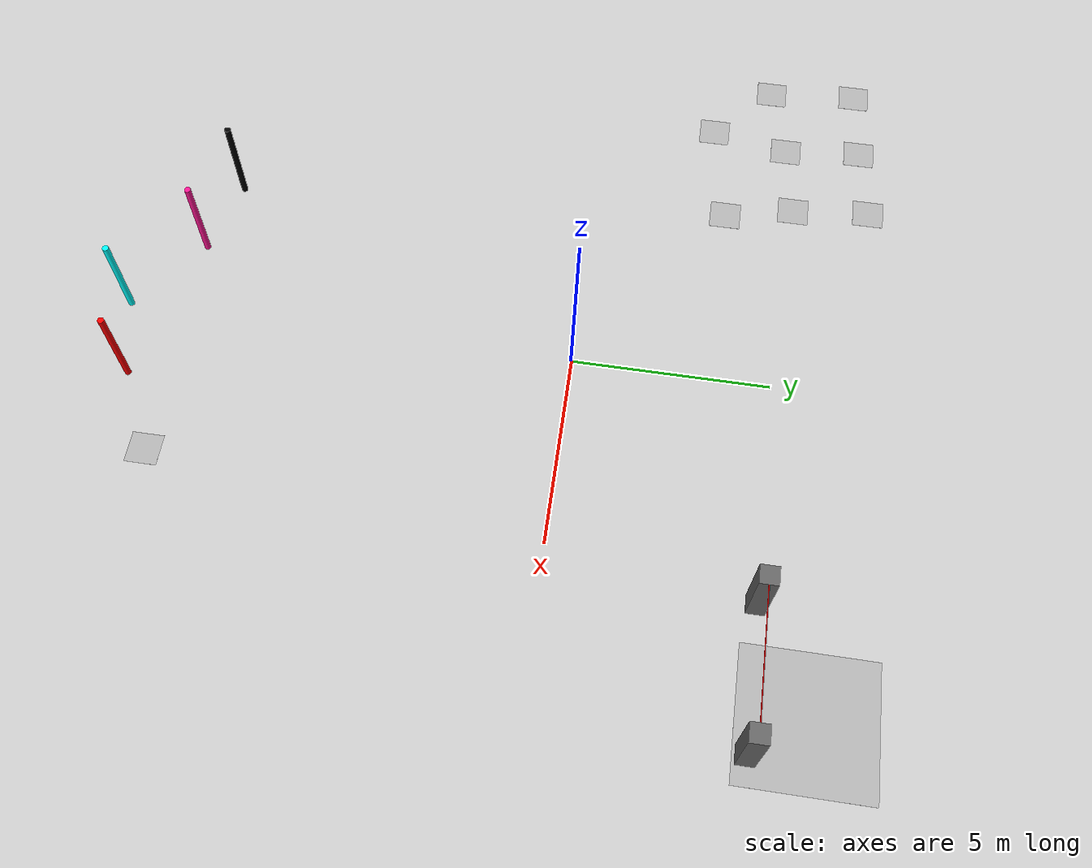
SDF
<?xml version='1.0' encoding='utf-8'?>
<sdf version='1.9'>
    <world name="eletroquad">

        <physics type="ode">
            <max_step_size>0.001</max_step_size>
            <real_time_factor>1</real_time_factor>
            <real_time_update_rate>1000</real_time_update_rate>
        </physics>

        <gravity>0 0 -9.8</gravity>

        <magnetic_field>5.5645e-06 2.28758e-05 -4.23884e-05</magnetic_field>

        <atmosphere type='adiabatic'/>

        <scene>
            <ambient>0.400000006 0.400000006 0.400000006 1</ambient>
            <background>0.699999988 0.699999988 0.699999988 1</background>
            <sky/>
            <shadows>true</shadows>
            <grid>false</grid>
        </scene>

        <!--Plataforma base-->
        <model name="ground_plane">
            <include>
                <uri>models/ground_plane</uri>
            </include>
        </model>

        <!-- 2 suportes -->
        <model name="suporte_1">
            <include>
                <uri>models/suporte</uri>
            </include>
            <pose>9.225 5 1 0 0 0</pose>
        </model>

        <model name="suporte_2">
            <include>
                <uri>models/suporte</uri>
            </include>
            <pose>5.775 5 1 0 0 0</pose>
        </model>

        <!-- plataforma + caminho -->
        <model name="figura_caminho">
            <include>
                <uri>models/figure_path</uri>
            </include>
            <pose>9.5 7.5 0.001 0 0 0</pose>
        </model>

        <!-- mangueira -->
        <model name="mangueira">
            <include>
                <uri>models/hose</uri>
            </include>
            <pose>7.5 5 1.99 0 1.5708 0</pose> <!--  girado por 90 graus em rad (pi/2) -->
        </model>

        <!-- 8 figuras -->
        <model name="bola_azul">
            <include>
                <uri>models/figure1</uri>
            </include>
            <pose>-5.7 7.3 0.001 0 0 0</pose>
        </model>

        <model name="quadrado_marrom">
            <include>
                <uri>models/figure2</uri>
            </include>
            <pose>-5.1 3.5 0.001 0 0 0</pose>
        </model>

        <model name="triangulo_azul">
            <include>
                <uri>models/figure3</uri>
            </include>
            <pose>-9.7 6.8 0.001 0 0 0</pose>
        </model>

        <model name="hexagono_vermelho">
            <include>
                <uri>models/figure4</uri>
            </include>
            <pose>-7.5 5 0.001 0 0 0</pose>
        </model>

        <model name="pentagono_vermelho">
            <include>
                <uri>models/figure5</uri>
            </include>
            <pose>-9.5 4.5 0.001 0 0 0</pose>
        </model>

        <model name="estrela_verde">
            <include>
                <uri>models/figure6</uri>
            </include>
            <pose>-7.9 3.0 0.001 0 0 0</pose>
        </model>

        <model name="cruz_rosa">
            <include>
                <uri>models/figure7</uri>
            </include>
            <pose>-5.5 5.3 0.001 0 0 0</pose>
        </model>

        <model name="poligono_laranja">
            <include>
                <uri>models/figure8</uri>
            </include>
            <pose>-7.7 7.0 0.001 0 0 0</pose>
        </model>

        <!-- 4 traves -->
        <model name="trave_vermelha">
            <include>
                <uri>models/pole_red</uri>
            </include>
            <pose>2 -11 1.25 0 0 0</pose>
        </model>

        <model name="trave_ciano">
            <include>
                <uri>models/pole_cyan</uri>
            </include>
            <pose>0 -11.5 1.25 0 0 0</pose>
        </model>

        <model name="trave_rosa">
            <include>
                <uri>models/pole_pink</uri>
            </include>
            <pose>-2 -10 1.25 0 0 0</pose>
        </model>

        <model name="trave_preta">
            <include>
                <uri>models/pole_black</uri>
            </include>
            <pose>-4 -9.5 1.25 0 0 0</pose>
        </model>

        <!-- plataforma das traves -->
        <model name="plataforma_traves">
            <include>
                <uri>models/figure1</uri>
            </include>
            <pose>4 -10 0.01 0 0 0</pose>
        </model>

        <!-- luz -->
        <light name='sun' type='directional'>
            <pose>0 0 10 0 0 0</pose>
            <cast_shadows>true</cast_shadows>
            <intensity>1</intensity>
            <direction>-0.5 0.1 -0.9</direction>
            <diffuse>0.8 0.8 0.8 1</diffuse>
            <specular>0.2 0.2 0.2 1</specular>
            <attenuation>
                <range>1000</range>
                <linear>0.01</linear>
                <constant>0.9</constant>
                <quadratic>0.001</quadratic>
            </attenuation>
            <spot>
                <inner_angle>0</inner_angle>
                <outer_angle>0</outer_angle>
                <falloff>0</falloff>
            </spot>
        </light>

        <spherical_coordinates>
            <surface_model>EARTH_WGS84</surface_model>
            <world_frame_orientation>ENU</world_frame_orientation>
            <latitude_deg>47.397971057728974</latitude_deg>
            <longitude_deg> 8.546163739800146</longitude_deg>
            <elevation>0</elevation>
        </spherical_coordinates>

    </world>
</sdf>

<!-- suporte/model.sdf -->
<sdf version='1.9'>
<model name='box'>
  <pose>0 0 0 0 0 0</pose>
  <link name='box_link'>
    <collision name='box_collision'>
      <geometry>
        <box>
          <size>0.4 0.4 2</size>
        </box>
      </geometry>
      <surface>
        <friction>
          <ode/>
        </friction>
        <bounce/>
        <contact/>
      </surface>
    </collision>
    <visual name='visual'>
      <geometry>
        <box>
          <size>0.45 0.45 2</size>
        </box>
      </geometry>
      <material>
        <ambient>0.25 0.25 0.25 1.0</ambient>
        <diffuse>0.4 0.4 0.4 1.0</diffuse>
        <specular>0.774597 0.774597 0.774597 1.0</specular>
      </material>
    </visual>
    <pose>0 0 0 0 0 0</pose>
    <enable_wind>false</enable_wind>
  </link>
  <static>true</static>
  <self_collide>false</self_collide>
</model>
</sdf>

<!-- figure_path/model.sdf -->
<sdf version='1.9'>
<model name='figure'>
  <pose>0 0 0 0 0 0</pose>
  <static>true</static>
  <self_collide>false</self_collide>
  <link name='box_link'>
    <collision name='box_collision'>
      <geometry>
        <box>
          <size>0.8 0.8 0.002</size>
        </box>
      </geometry>
      <surface>
        <friction>
          <ode/>
        </friction>
        <bounce/>
        <contact/>
      </surface>
    </collision>
    <visual name='visual'>
      <pose>0 0 -0.001 0 0 0</pose>
      <geometry>
        <box>
          <size>0.8 0.8 0.001</size>
        </box>
      </geometry>
      <material>
        <ambient>1 1 1 1</ambient> <!-- white -->
        <diffuse>1 1 1 1</diffuse>
        <specular>1 1 1 1</specular>
        <emissive>1 1 1 1</emissive>
      </material>
      <cast_shadows>false</cast_shadows>
    </visual>
    <visual name='image'>
      <pose> -1.2 -1.2 0.001 0 0 0</pose>
      <geometry>
        <box>
          <size>3.2 3.2 0.001</size>
        </box>
      </geometry>
      <material>
        <diffuse>0.7 0.7 0.7 1</diffuse>
        <specular>1 1 1 1</specular>
        <pbr>
          <metal>
            <albedo_map>materials/textures/bola_azul_caminho.png</albedo_map>   <!-- image-->
            <metalness> 0 </metalness>
            <roughness>1</roughness>
          </metal>
        </pbr>
      </material>
    <cast_shadows>false</cast_shadows>
    </visual>
    <enable_wind>false</enable_wind>
  </link>
</model>
</sdf>

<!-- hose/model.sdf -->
<sdf version='1.9'>
  <model name='pole'>
    <pose>0 0 0 0 0 0</pose>
    <link name='cylinder_link'>
      <collision name='cylinder_collision'>
        <geometry>
            <cylinder>
              <radius>0.0127</radius>
              <length>3</length>
            </cylinder>
          </geometry>
        <surface>
          <friction>
            <ode/>
          </friction>
          <bounce/>
          <contact/>
        </surface>
      </collision>
      <visual name='cylinder_visual'>
          <geometry>
            <cylinder>
              <radius>0.0127</radius>
              <length>3</length>
            </cylinder>
          </geometry>
          <material>
          <ambient>1 0 0 1</ambient>
          <diffuse>1 0 0 1</diffuse>
          <specular>0.5 0.5 0.5 1</specular>
          </material>
        </visual>
      <pose>0 0 0 0 0 0</pose>
      <enable_wind>false</enable_wind>
    </link>
    <static>true</static>
    <self_collide>false</self_collide>
  </model>
</sdf>

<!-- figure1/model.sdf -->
<sdf version='1.9'>
<model name='figure'>
  <pose>0 0 0 0 0 0</pose>
  <static>true</static>
  <self_collide>false</self_collide>
  <link name='box_link'>
    <collision name='box_collision'>
      <geometry>
        <box>
          <size>0.8 0.8 0.002</size>
        </box>
      </geometry>
      <surface>
        <friction>
          <ode/>
        </friction>
        <bounce/>
        <contact/>
      </surface>
    </collision>
    <visual name='visual'>
      <pose>0 0 -0.001 0 0 0</pose>
      <geometry>
        <box>
          <size>0.8 0.8 0.001</size>
        </box>
      </geometry>
      <material>
        <ambient>1 1 1 1</ambient> <!-- white -->
        <diffuse>1 1 1 1</diffuse>
        <specular>1 1 1 1</specular>
        <emissive>1 1 1 1</emissive>
      </material>
      <cast_shadows>false</cast_shadows>
    </visual>
    <visual name='image'>
      <pose>0 0 0.001 0 0 0</pose>
      <geometry>
        <box>
          <size>0.8 0.8 0.001</size>
        </box>
      </geometry>
      <material>
        <diffuse>0.7 0.7 0.7 1</diffuse>
        <specular>1 1 1 1</specular>
        <pbr>
          <metal>
            <albedo_map>materials/textures/bola_azul.png</albedo_map>   <!-- image-->
            <metalness> 0 </metalness>
            <roughness>1</roughness>
          </metal>
        </pbr>
      </material>
      <cast_shadows>false</cast_shadows>
    </visual>
    <enable_wind>false</enable_wind>
  </link>
</model>
</sdf>

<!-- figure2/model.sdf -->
<sdf version='1.9'>
<model name='figure'>
  <pose>0 0 0 0 0 0</pose>
  <static>true</static>
  <self_collide>false</self_collide>
  <link name='box_link'>
    <collision name='box_collision'>
      <geometry>
        <box>
          <size>0.8 0.8 0.002</size>
        </box>
      </geometry>
      <surface>
        <friction>
          <ode/>
        </friction>
        <bounce/>
        <contact/>
      </surface>
    </collision>
    <visual name='visual'>
      <pose>0 0 -0.001 0 0 0</pose>
      <geometry>
        <box>
          <size>0.8 0.8 0.001</size>
        </box>
      </geometry>
      <material>
        <ambient>1 1 1 1</ambient> <!-- white -->
        <diffuse>1 1 1 1</diffuse>
        <specular>1 1 1 1</specular>
        <emissive>1 1 1 1</emissive>
      </material>
      <cast_shadows>false</cast_shadows>
    </visual>
    <visual name='image'>
      <pose>0 0 0.001 0 0 0</pose>
      <geometry>
        <box>
          <size>0.8 0.8 0.001</size>
        </box>
      </geometry>
      <material>
        <diffuse>0.7 0.7 0.7 1</diffuse>
        <specular>1 1 1 1</specular>
        <pbr>
          <metal>
            <albedo_map>materials/textures/quadrado_marrom.png</albedo_map>   <!-- image-->
            <metalness> 0 </metalness>
            <roughness>1</roughness>
          </metal>
        </pbr>
      </material>
      <cast_shadows>false</cast_shadows>
    </visual>
    <enable_wind>false</enable_wind>
  </link>
</model>
</sdf>

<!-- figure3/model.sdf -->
<sdf version='1.9'>
<model name='figure'>
  <pose>0 0 0 0 0 0</pose>
  <static>true</static>
  <self_collide>false</self_collide>
  <link name='box_link'>
    <collision name='box_collision'>
      <geometry>
        <box>
          <size>0.8 0.8 0.002</size>
        </box>
      </geometry>
      <surface>
        <friction>
          <ode/>
        </friction>
        <bounce/>
        <contact/>
      </surface>
    </collision>
    <visual name='visual'>
      <pose>0 0 -0.001 0 0 0</pose>
      <geometry>
        <box>
          <size>0.8 0.8 0.001</size>
        </box>
      </geometry>
      <material>
        <ambient>1 1 1 1</ambient> <!-- white -->
        <diffuse>1 1 1 1</diffuse>
        <specular>1 1 1 1</specular>
        <emissive>1 1 1 1</emissive>
      </material>
      <cast_shadows>false</cast_shadows>
    </visual>
    <visual name='image'>
      <pose>0 0 0.001 0 0 0</pose>
      <geometry>
        <box>
          <size>0.8 0.8 0.001</size>
        </box>
      </geometry>
      <material>
        <diffuse>0.7 0.7 0.7 1</diffuse>
        <specular>1 1 1 1</specular>
        <pbr>
          <metal>
            <albedo_map>materials/textures/triangulo_azul.png</albedo_map>   <!-- image-->
            <metalness> 0 </metalness>
            <roughness>1</roughness>
          </metal>
        </pbr>
      </material>
      <cast_shadows>false</cast_shadows>
    </visual>
    <enable_wind>false</enable_wind>
  </link>
</model>
</sdf>

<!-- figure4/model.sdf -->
<sdf version='1.9'>
<model name='figure'>
  <pose>0 0 0 0 0 0</pose>
  <static>true</static>
  <self_collide>false</self_collide>
  <link name='box_link'>
    <collision name='box_collision'>
      <geometry>
        <box>
          <size>0.8 0.8 0.002</size>
        </box>
      </geometry>
      <surface>
        <friction>
          <ode/>
        </friction>
        <bounce/>
        <contact/>
      </surface>
    </collision>
    <visual name='visual'>
      <pose>0 0 -0.0005 0 0 0</pose>
      <geometry>
        <box>
          <size>0.8 0.8 0.001</size>
        </box>
      </geometry>
      <material>
        <ambient>1 1 1 1</ambient> <!-- white -->
        <diffuse>1 1 1 1</diffuse>
        <specular>1 1 1 1</specular>
        <emissive>1 1 1 1</emissive>
      </material>
      <cast_shadows>false</cast_shadows>
    </visual>
    <visual name='image'>
      <pose>0 0 0.0005 0 0 0</pose>
      <geometry>
        <box>
          <size>0.8 0.8 0.001</size>
        </box>
      </geometry>
      <material>
        <diffuse>0.7 0.7 0.7 1</diffuse>
        <specular>1 1 1 1</specular>
        <pbr>
          <metal>
            <albedo_map>materials/textures/hexagono_vermelho.png</albedo_map>   <!-- image-->
            <metalness> 0 </metalness>
            <roughness>1</roughness>
          </metal>
        </pbr>
      </material>
      <cast_shadows>false</cast_shadows>
    </visual>
    <enable_wind>false</enable_wind>
  </link>
</model>
</sdf>

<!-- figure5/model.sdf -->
<sdf version='1.9'>
<model name='figure'>
  <pose>0 0 0 0 0 0</pose>
  <static>true</static>
  <self_collide>false</self_collide>
  <link name='box_link'>
    <collision name='box_collision'>
      <geometry>
        <box>
          <size>0.8 0.8 0.002</size>
        </box>
      </geometry>
      <surface>
        <friction>
          <ode/>
        </friction>
        <bounce/>
        <contact/>
      </surface>
    </collision>
    <visual name='visual'>
      <pose>0 0 -0.0005 0 0 0</pose>
      <geometry>
        <box>
          <size>0.8 0.8 0.001</size>
        </box>
      </geometry>
      <material>
        <ambient>1 1 1 1</ambient> <!-- white -->
        <diffuse>1 1 1 1</diffuse>
        <specular>1 1 1 1</specular>
        <emissive>1 1 1 1</emissive>
      </material>
      <cast_shadows>false</cast_shadows>
    </visual>
    <visual name='image'>
      <pose>0 0 0.0005 0 0 0</pose>
      <geometry>
        <box>
          <size>0.8 0.8 0.001</size>
        </box>
      </geometry>
      <material>
        <diffuse>0.7 0.7 0.7 1</diffuse>
        <specular>1 1 1 1</specular>
        <pbr>
          <metal>
            <albedo_map>materials/textures/pentagono_vermelho.png</albedo_map>   <!-- image-->
            <metalness> 0 </metalness>
            <roughness>1</roughness>
          </metal>
        </pbr>
      </material>
      <cast_shadows>false</cast_shadows>
    </visual>
    <enable_wind>false</enable_wind>
  </link>
</model>
</sdf>

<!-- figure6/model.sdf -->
<sdf version='1.9'>
<model name='figure'>
  <pose>0 0 0 0 0 0</pose>
  <static>true</static>
  <self_collide>false</self_collide>
  <link name='box_link'>
    <collision name='box_collision'>
      <geometry>
        <box>
          <size>0.8 0.8 0.002</size>
        </box>
      </geometry>
      <surface>
        <friction>
          <ode/>
        </friction>
        <bounce/>
        <contact/>
      </surface>
    </collision>
    <visual name='visual'>
      <pose>0 0 -0.0005 0 0 0</pose>
      <geometry>
        <box>
          <size>0.8 0.8 0.001</size>
        </box>
      </geometry>
      <material>
        <ambient>1 1 1 1</ambient> <!-- white -->
        <diffuse>1 1 1 1</diffuse>
        <specular>1 1 1 1</specular>
        <emissive>1 1 1 1</emissive>
      </material>
      <cast_shadows>false</cast_shadows>
    </visual>
    <visual name='image'>
      <pose>0 0 0.0005 0 0 0</pose>
      <geometry>
        <box>
          <size>0.8 0.8 0.001</size>
        </box>
      </geometry>
      <material>
        <diffuse>0.7 0.7 0.7 1</diffuse>
        <specular>1 1 1 1</specular>
        <pbr>
          <metal>
            <albedo_map>materials/textures/estrela_verde.png</albedo_map>   <!-- image-->
            <metalness> 0 </metalness>
            <roughness>1</roughness>
          </metal>
        </pbr>
      </material>
      <cast_shadows>false</cast_shadows>
    </visual>
    <enable_wind>false</enable_wind>
  </link>
</model>
</sdf>

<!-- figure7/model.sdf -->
<sdf version='1.9'>
<model name='figure'>
  <pose>0 0 0 0 0 0</pose>
  <static>true</static>
  <self_collide>false</self_collide>
  <link name='box_link'>
    <collision name='box_collision'>
      <geometry>
        <box>
          <size>0.8 0.8 0.002</size>
        </box>
      </geometry>
      <surface>
        <friction>
          <ode/>
        </friction>
        <bounce/>
        <contact/>
      </surface>
    </collision>
    <visual name='visual'>
      <pose>0 0 -0.0005 0 0 0</pose>
      <geometry>
        <box>
          <size>0.8 0.8 0.001</size>
        </box>
      </geometry>
      <material>
        <ambient>1 1 1 1</ambient> <!-- white -->
        <diffuse>1 1 1 1</diffuse>
        <specular>1 1 1 1</specular>
        <emissive>1 1 1 1</emissive>
      </material>
      <cast_shadows>false</cast_shadows>
    </visual>
    <visual name='image'>
      <pose>0 0 0.0005 0 0 0</pose>
      <geometry>
        <box>
          <size>0.8 0.8 0.001</size>
        </box>
      </geometry>
      <material>
        <diffuse>0.7 0.7 0.7 1</diffuse>
        <specular>1 1 1 1</specular>
        <pbr>
          <metal>
            <albedo_map>materials/textures/cruz_rosa.png</albedo_map>   <!-- image-->
            <metalness> 0 </metalness>
            <roughness>1</roughness>
          </metal>
        </pbr>
      </material>
      <cast_shadows>false</cast_shadows>
    </visual>
    <enable_wind>false</enable_wind>
  </link>
</model>
</sdf>

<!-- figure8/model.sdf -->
<sdf version='1.9'>
<model name='figure'>
  <pose>0 0 0 0 0 0</pose>
  <static>true</static>
  <self_collide>false</self_collide>
  <link name='box_link'>
    <collision name='box_collision'>
      <geometry>
        <box>
          <size>0.8 0.8 0.002</size>
        </box>
      </geometry>
      <surface>
        <friction>
          <ode/>
        </friction>
        <bounce/>
        <contact/>
      </surface>
    </collision>
    <visual name='visual'>
      <pose>0 0 -0.0005 0 0 0</pose>
      <geometry>
        <box>
          <size>0.8 0.8 0.001</size>
        </box>
      </geometry>
      <material>
        <ambient>1 1 1 1</ambient> <!-- white -->
        <diffuse>1 1 1 1</diffuse>
        <specular>1 1 1 1</specular>
        <emissive>1 1 1 1</emissive>
      </material>
      <cast_shadows>false</cast_shadows>
    </visual>
    <visual name='image'>
      <pose>0 0 0.0005 0 0 0</pose>
      <geometry>
        <box>
          <size>0.8 0.8 0.001</size>
        </box>
      </geometry>
      <material>
        <diffuse>0.7 0.7 0.7 1</diffuse>
        <specular>1 1 1 1</specular>
        <pbr>
          <metal>
            <albedo_map>materials/textures/poligono_laranja.png</albedo_map>   <!-- image-->
            <metalness> 0 </metalness>
            <roughness>1</roughness>
          </metal>
        </pbr>
      </material>
      <cast_shadows>false</cast_shadows>
    </visual>
    <enable_wind>false</enable_wind>
  </link>
</model>
</sdf>

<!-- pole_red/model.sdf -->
<sdf version='1.9'>
  <model name='pole'>
    <pose>0 0 0 0 0 0</pose>
    <link name='cylinder_link'>
      <collision name='cylinder_collision'>
        <geometry>
            <cylinder>
              <radius>0.08</radius>
              <length>2.5</length>
            </cylinder>
          </geometry>
        <surface>
          <friction>
            <ode/>
          </friction>
          <bounce/>
          <contact/>
        </surface>
      </collision>
      <visual name='cylinder_visual'>
          <geometry>
            <cylinder>
              <radius>0.08</radius>
              <length>2.5</length>
            </cylinder>
          </geometry>
          <material>
          <ambient>1 0 0 1</ambient>
          <diffuse>1 0 0 1</diffuse>
          <specular>0.5 0.5 0.5 1</specular>
        </material>
        </visual>
      <pose>0 0 0 0 0 0</pose>
      <enable_wind>false</enable_wind>
    </link>
    <static>true</static>
    <self_collide>false</self_collide>
  </model>
</sdf>

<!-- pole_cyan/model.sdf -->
<sdf version='1.9'>
  <model name='pole'>
    <pose>0 0 0 0 0 0</pose>
    <link name='cylinder_link'>
      <collision name='cylinder_collision'>
        <geometry>
            <cylinder>
              <radius>0.08</radius>
              <length>2.5</length>
            </cylinder>
          </geometry>
        <surface>
          <friction>
            <ode/>
          </friction>
          <bounce/>
          <contact/>
        </surface>
      </collision>
      <visual name='cylinder_visual'>
          <geometry>
            <cylinder>
              <radius>0.08</radius>
              <length>2.5</length>
            </cylinder>
          </geometry>
          <material>
          <ambient>0 1 1 1</ambient>
          <diffuse>0 1 1 1</diffuse>
          <specular>0.5 0.5 0.5 1</specular>
        </material>
        </visual>
      <pose>0 0 0 0 0 0</pose>
      <enable_wind>false</enable_wind>
    </link>
    <static>true</static>
    <self_collide>false</self_collide>
  </model>
</sdf>

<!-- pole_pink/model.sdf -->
<sdf version='1.9'>
  <model name='pole'>
    <pose>0 0 0 0 0 0</pose>
    <link name='cylinder_link'>
      <collision name='cylinder_collision'>
        <geometry>
            <cylinder>
              <radius>0.08</radius>
              <length>2.5</length>
            </cylinder>
          </geometry>
        <surface>
          <friction>
            <ode/>
          </friction>
          <bounce/>
          <contact/>
        </surface>
      </collision>
      <visual name='cylinder_visual'>
          <geometry>
            <cylinder>
              <radius>0.08</radius>
              <length>2.5</length>
            </cylinder>
          </geometry>
          <material>
          <ambient>1 0.078 0.576 1</ambient>
          <diffuse>1 0.078 0.576 1</diffuse>
          <specular>0.5 0.5 0.5 1</specular>
        </material>
        </visual>
      <pose>0 0 0 0 0 0</pose>
      <enable_wind>false</enable_wind>
    </link>
    <static>true</static>
    <self_collide>false</self_collide>
  </model>
</sdf>

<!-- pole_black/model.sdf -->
<sdf version='1.9'>
  <model name='pole'>
    <pose>0 0 0 0 0 0</pose>
    <link name='cylinder_link'>
      <collision name='cylinder_collision'>
        <geometry>
            <cylinder>
              <radius>0.08</radius>
              <length>2.5</length>
            </cylinder>
          </geometry>
        <surface>
          <friction>
            <ode/>
          </friction>
          <bounce/>
          <contact/>
        </surface>
      </collision>
      <visual name='cylinder_visual'>
          <geometry>
            <cylinder>
              <radius>0.08</radius>
              <length>2.5</length>
            </cylinder>
          </geometry>
          <material>
          <ambient>0 0 0 1</ambient>
          <diffuse>0 0 0 1</diffuse>
          <specular>0.5 0.5 0.5 1</specular>
        </material>
        </visual>
      <pose>0 0 0 0 0 0</pose>
      <enable_wind>false</enable_wind>
    </link>
    <static>true</static>
    <self_collide>false</self_collide>
  </model>
</sdf>
